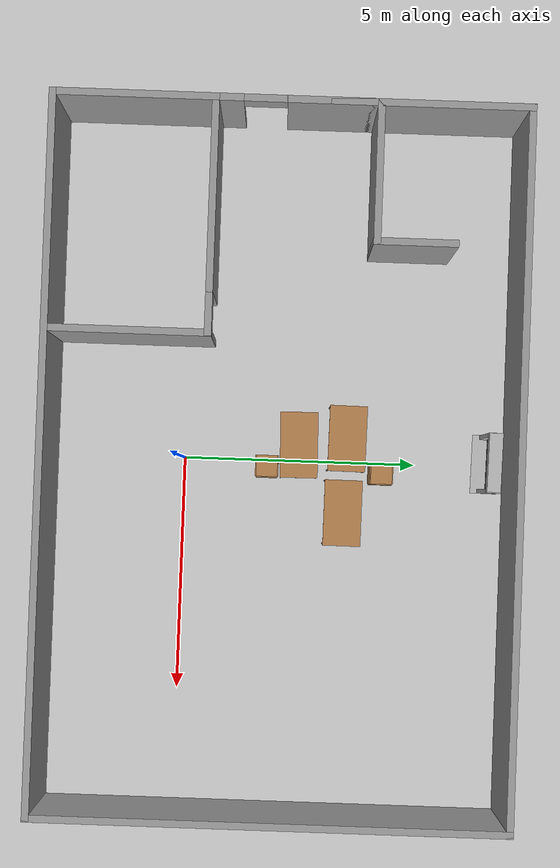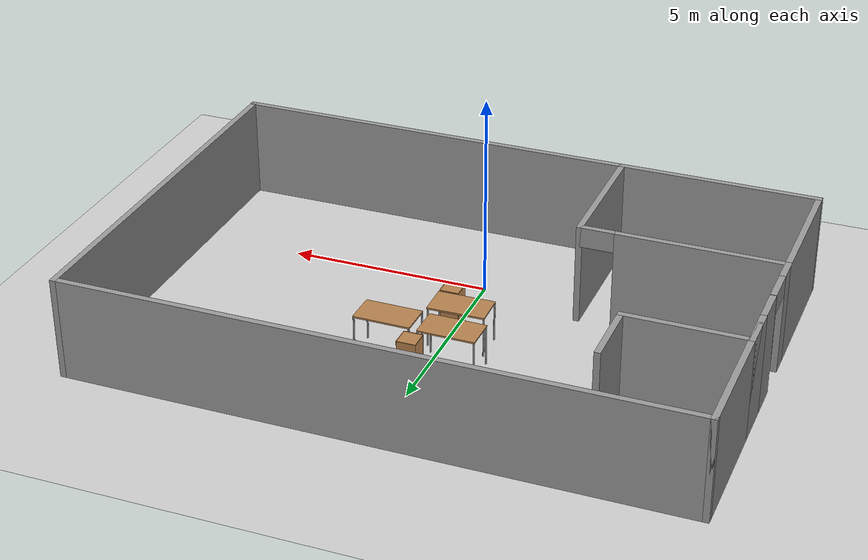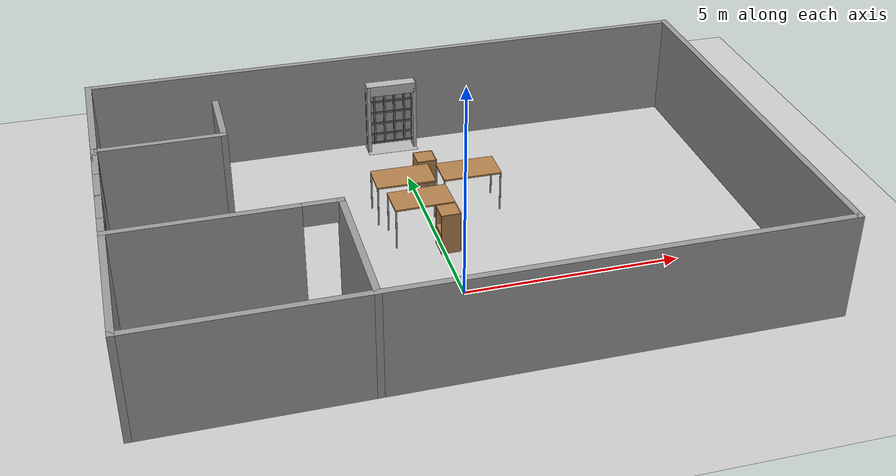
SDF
<sdf version="1.6">
 <world name="default">
  <model name="ground_plane">
   <static>1</static>
   <link name="link">
    <collision name="collision">
     <geometry><plane><normal>0 0 1</normal><size>100 100</size></plane></geometry>
     <surface><friction><ode><mu>100</mu><mu2>50</mu2></ode></friction></surface>
    </collision>
    <visual name="visual">
     <cast_shadows>0</cast_shadows>
     <geometry><plane><normal>0 0 1</normal><size>100 100</size></plane></geometry>
     <material>
      <script><uri>file://media/materials/scripts/gazebo.material</uri><name>Gazebo/Grey</name></script>
     </material>
    </visual>
   </link>
  </model>
  <model name="table_7">
   <static>0</static>
   <link name="link">
    <collision name="surface">
     <pose>0 0 1 0 -0 0</pose>
     <geometry><box><size>1.5 0.8 0.03</size></box></geometry>
     <surface><friction><ode><mu>0.6</mu><mu2>0.6</mu2></ode></friction></surface>
    </collision>
    <visual name="visual1">
     <pose>0 0 1 0 -0 0</pose>
     <geometry><box><size>1.4 0.8 0.04</size></box></geometry>
     <material>
      <script><uri>file://media/materials/scripts/gazebo.material</uri><name>Gazebo/Wood</name></script>
     </material>
    </visual>
    <collision name="front_left_leg">
     <pose>0.68 0.38 0.5 0 -0 0</pose>
     <geometry><cylinder><radius>0.02</radius><length>1</length></cylinder></geometry>
    </collision>
    <visual name="front_left_leg">
     <pose>0.68 0.38 0.5 0 -0 0</pose>
     <geometry><cylinder><radius>0.02</radius><length>1</length></cylinder></geometry>
     <material>
      <script><uri>file://media/materials/scripts/gazebo.material</uri><name>Gazebo/Grey</name></script>
     </material>
    </visual>
    <collision name="front_right_leg">
     <pose>0.68 -0.38 0.5 0 -0 0</pose>
     <geometry><cylinder><radius>0.02</radius><length>1</length></cylinder></geometry>
    </collision>
    <visual name="front_right_leg">
     <pose>0.68 -0.38 0.5 0 -0 0</pose>
     <geometry><cylinder><radius>0.02</radius><length>1</length></cylinder></geometry>
     <material>
      <script><uri>file://media/materials/scripts/gazebo.material</uri><name>Gazebo/Grey</name></script>
     </material>
    </visual>
    <collision name="back_right_leg">
     <pose>-0.68 -0.38 0.5 0 -0 0</pose>
     <geometry><cylinder><radius>0.02</radius><length>1</length></cylinder></geometry>
    </collision>
    <visual name="back_right_leg">
     <pose>-0.68 -0.38 0.5 0 -0 0</pose>
     <geometry><cylinder><radius>0.02</radius><length>1</length></cylinder></geometry>
     <material>
      <script><uri>file://media/materials/scripts/gazebo.material</uri><name>Gazebo/Grey</name></script>
     </material>
    </visual>
    <collision name="back_left_leg">
     <pose>-0.68 0.38 0.5 0 -0 0</pose>
     <geometry><cylinder><radius>0.02</radius><length>1</length></cylinder></geometry>
    </collision>
    <visual name="back_left_leg">
     <pose>-0.68 0.38 0.5 0 -0 0</pose>
     <geometry><cylinder><radius>0.02</radius><length>1</length></cylinder></geometry>
     <material>
      <script><uri>file://media/materials/scripts/gazebo.material</uri><name>Gazebo/Grey</name></script>
     </material>
    </visual>
    <inertial>
     <inertia><ixx>1</ixx><ixy>0</ixy><ixz>0</ixz><iyy>1</iyy><iyz>0</iyz><izz>1</izz></inertia>
     <mass>1</mass>
    </inertial>
   </link>
   <pose>-0.500854 3.49556 -2e-06 0 -2e-06 -0.011276</pose>
  </model>
  <model name="table_7_clone">
   <static>0</static>
   <link name="link">
    <collision name="surface">
     <pose>0 0 1 0 -0 0</pose>
     <geometry><box><size>1.5 0.8 0.03</size></box></geometry>
     <surface><friction><ode><mu>0.6</mu><mu2>0.6</mu2></ode></friction></surface>
    </collision>
    <visual name="visual1">
     <pose>0 0 1 0 -0 0</pose>
     <geometry><box><size>1.4 0.8 0.04</size></box></geometry>
     <material>
      <script><uri>file://media/materials/scripts/gazebo.material</uri><name>Gazebo/Wood</name></script>
     </material>
    </visual>
    <collision name="front_left_leg">
     <pose>0.68 0.38 0.5 0 -0 0</pose>
     <geometry><cylinder><radius>0.02</radius><length>1</length></cylinder></geometry>
    </collision>
    <visual name="front_left_leg">
     <pose>0.68 0.38 0.5 0 -0 0</pose>
     <geometry><cylinder><radius>0.02</radius><length>1</length></cylinder></geometry>
     <material>
      <script><uri>file://media/materials/scripts/gazebo.material</uri><name>Gazebo/Grey</name></script>
     </material>
    </visual>
    <collision name="front_right_leg">
     <pose>0.68 -0.38 0.5 0 -0 0</pose>
     <geometry><cylinder><radius>0.02</radius><length>1</length></cylinder></geometry>
    </collision>
    <visual name="front_right_leg">
     <pose>0.68 -0.38 0.5 0 -0 0</pose>
     <geometry><cylinder><radius>0.02</radius><length>1</length></cylinder></geometry>
     <material>
      <script><uri>file://media/materials/scripts/gazebo.material</uri><name>Gazebo/Grey</name></script>
     </material>
    </visual>
    <collision name="back_right_leg">
     <pose>-0.68 -0.38 0.5 0 -0 0</pose>
     <geometry><cylinder><radius>0.02</radius><length>1</length></cylinder></geometry>
    </collision>
    <visual name="back_right_leg">
     <pose>-0.68 -0.38 0.5 0 -0 0</pose>
     <geometry><cylinder><radius>0.02</radius><length>1</length></cylinder></geometry>
     <material>
      <script><uri>file://media/materials/scripts/gazebo.material</uri><name>Gazebo/Grey</name></script>
     </material>
    </visual>
    <collision name="back_left_leg">
     <pose>-0.68 0.38 0.5 0 -0 0</pose>
     <geometry><cylinder><radius>0.02</radius><length>1</length></cylinder></geometry>
    </collision>
    <visual name="back_left_leg">
     <pose>-0.68 0.38 0.5 0 -0 0</pose>
     <geometry><cylinder><radius>0.02</radius><length>1</length></cylinder></geometry>
     <material>
      <script><uri>file://media/materials/scripts/gazebo.material</uri><name>Gazebo/Grey</name></script>
     </material>
    </visual>
    <inertial>
     <inertia><ixx>1</ixx><ixy>0</ixy><ixz>0</ixz><iyy>1</iyy><iyz>0</iyz><izz>1</izz></inertia>
     <mass>1</mass>
    </inertial>
   </link>
   <pose>-0.330828 2.46766 -9e-06 0 -1e-06 0.019149</pose>
  </model>
  <model name="table_7_clone_0">
   <static>0</static>
   <link name="link">
    <collision name="surface">
     <pose>0 0 1 0 -0 0</pose>
     <geometry><box><size>1.5 0.8 0.03</size></box></geometry>
     <surface><friction><ode><mu>0.6</mu><mu2>0.6</mu2></ode></friction></surface>
    </collision>
    <visual name="visual1">
     <pose>0 0 1 0 -0 0</pose>
     <geometry><box><size>1.4 0.8 0.04</size></box></geometry>
     <material>
      <script><uri>file://media/materials/scripts/gazebo.material</uri><name>Gazebo/Wood</name></script>
     </material>
    </visual>
    <collision name="front_left_leg">
     <pose>0.68 0.38 0.5 0 -0 0</pose>
     <geometry><cylinder><radius>0.02</radius><length>1</length></cylinder></geometry>
    </collision>
    <visual name="front_left_leg">
     <pose>0.68 0.38 0.5 0 -0 0</pose>
     <geometry><cylinder><radius>0.02</radius><length>1</length></cylinder></geometry>
     <material>
      <script><uri>file://media/materials/scripts/gazebo.material</uri><name>Gazebo/Grey</name></script>
     </material>
    </visual>
    <collision name="front_right_leg">
     <pose>0.68 -0.38 0.5 0 -0 0</pose>
     <geometry><cylinder><radius>0.02</radius><length>1</length></cylinder></geometry>
    </collision>
    <visual name="front_right_leg">
     <pose>0.68 -0.38 0.5 0 -0 0</pose>
     <geometry><cylinder><radius>0.02</radius><length>1</length></cylinder></geometry>
     <material>
      <script><uri>file://media/materials/scripts/gazebo.material</uri><name>Gazebo/Grey</name></script>
     </material>
    </visual>
    <collision name="back_right_leg">
     <pose>-0.68 -0.38 0.5 0 -0 0</pose>
     <geometry><cylinder><radius>0.02</radius><length>1</length></cylinder></geometry>
    </collision>
    <visual name="back_right_leg">
     <pose>-0.68 -0.38 0.5 0 -0 0</pose>
     <geometry><cylinder><radius>0.02</radius><length>1</length></cylinder></geometry>
     <material>
      <script><uri>file://media/materials/scripts/gazebo.material</uri><name>Gazebo/Grey</name></script>
     </material>
    </visual>
    <collision name="back_left_leg">
     <pose>-0.68 0.38 0.5 0 -0 0</pose>
     <geometry><cylinder><radius>0.02</radius><length>1</length></cylinder></geometry>
    </collision>
    <visual name="back_left_leg">
     <pose>-0.68 0.38 0.5 0 -0 0</pose>
     <geometry><cylinder><radius>0.02</radius><length>1</length></cylinder></geometry>
     <material>
      <script><uri>file://media/materials/scripts/gazebo.material</uri><name>Gazebo/Grey</name></script>
     </material>
    </visual>
    <inertial>
     <inertia><ixx>1</ixx><ixy>0</ixy><ixz>0</ixz><iyy>1</iyy><iyz>0</iyz><izz>1</izz></inertia>
     <mass>1</mass>
    </inertial>
   </link>
   <pose>1.08492 3.44239 -6e-06 1e-06 -4e-06 -0.005791</pose>
  </model>
  <model name="office_building_0">
   <pose>0.0648 2.0804 0 0 -0 0</pose>
   <link name="Wall_15">
    <collision name="Wall_15_Collision">
     <geometry><box><size>3.25 0.15 2.5</size></box></geometry>
     <pose>0 0 1.25 0 -0 0</pose>
    </collision>
    <visual name="Wall_15_Visual">
     <pose>0 0 1.25 0 -0 0</pose>
     <geometry><box><size>3.25 0.15 2.5</size></box></geometry>
     <material>
      <script><uri>file://media/materials/scripts/gazebo.material</uri><name>Gazebo/Grey</name></script>
      <ambient>1 1 1 1</ambient>
     </material>
    </visual>
    <pose>-7.425 3.375 0 0 0 -1.5708</pose>
   </link>
   <link name="Wall_16">
    <collision name="Wall_16_Collision">
     <geometry><box><size>3 0.15 2.5</size></box></geometry>
     <pose>0 0 1.25 0 -0 0</pose>
    </collision>
    <visual name="Wall_16_Visual">
     <pose>0 0 1.25 0 -0 0</pose>
     <geometry><box><size>3 0.15 2.5</size></box></geometry>
     <material>
      <script><uri>file://media/materials/scripts/gazebo.material</uri><name>Gazebo/Grey</name></script>
      <ambient>1 1 1 1</ambient>
     </material>
    </visual>
    <pose>-6 1.825 0 0 -0 0</pose>
   </link>
   <link name="Wall_17">
    <collision name="Wall_17_Collision">
     <geometry><box><size>1.75 0.15 2.5</size></box></geometry>
     <pose>0 0 1.25 0 -0 0</pose>
    </collision>
    <visual name="Wall_17_Visual">
     <pose>0 0 1.25 0 -0 0</pose>
     <geometry><box><size>1.75 0.15 2.5</size></box></geometry>
     <material>
      <script><uri>file://media/materials/scripts/gazebo.material</uri><name>Gazebo/Grey</name></script>
      <ambient>1 1 1 1</ambient>
     </material>
    </visual>
    <pose>-4.575 2.625 0 0 -0 1.5708</pose>
   </link>
   <link name="Wall_19">
    <collision name="Wall_19_Collision">
     <geometry><box><size>10 0.15 2.5</size></box></geometry>
     <pose>0 0 1.25 0 -0 0</pose>
    </collision>
    <visual name="Wall_19_Visual">
     <pose>0 0 1.25 0 -0 0</pose>
     <geometry><box><size>10 0.15 2.5</size></box></geometry>
     <material>
      <script><uri>file://media/materials/scripts/gazebo.material</uri><name>Gazebo/Grey</name></script>
      <ambient>1 1 1 1</ambient>
     </material>
    </visual>
    <pose>7.425 0 0 0 0 -1.5708</pose>
   </link>
   <link name="Wall_20">
    <collision name="Wall_20_Collision">
     <geometry><box><size>15 0.15 2.5</size></box></geometry>
     <pose>0 0 1.25 0 -0 0</pose>
    </collision>
    <visual name="Wall_20_Visual">
     <pose>0 0 1.25 0 -0 0</pose>
     <geometry><box><size>15 0.15 2.5</size></box></geometry>
     <material>
      <script><uri>file://media/materials/scripts/gazebo.material</uri><name>Gazebo/Grey</name></script>
      <ambient>1 1 1 1</ambient>
     </material>
    </visual>
    <pose>0 -4.925 0 0 -0 3.14159</pose>
   </link>
   <link name="Wall_21">
    <collision name="Wall_21_Collision">
     <geometry><box><size>3.5 0.15 2.5</size></box></geometry>
     <pose>0 0 1.25 0 -0 0</pose>
    </collision>
    <visual name="Wall_21_Visual">
     <pose>0 0 1.25 0 -0 0</pose>
     <geometry><box><size>3.5 0.15 2.5</size></box></geometry>
     <material>
      <script><uri>file://media/materials/scripts/gazebo.material</uri><name>Gazebo/Grey</name></script>
      <ambient>1 1 1 1</ambient>
     </material>
    </visual>
    <pose>-7.425 -3.25 0 0 -0 1.5708</pose>
   </link>
   <link name="Wall_22">
    <pose>-5 -1.575 0 0 -0 0</pose>
    <visual name="Wall_22_Visual_0">
     <pose>-0.454413 0 1.25 0 -0 0</pose>
     <geometry><box><size>4.09117 0.15 2.5</size></box></geometry>
     <material>
      <script><uri>file://media/materials/scripts/gazebo.material</uri><name>Gazebo/Grey</name></script>
      <ambient>1 1 1 1</ambient>
     </material>
    </visual>
    <collision name="Wall_22_Collision_0">
     <geometry><box><size>4.09117 0.15 2.5</size></box></geometry>
     <pose>-0.454413 0 1.25 0 -0 0</pose>
    </collision>
    <visual name="Wall_22_Visual_1">
     <pose>2.49559 0 1.25 0 -0 0</pose>
     <geometry><box><size>0.008827 0.15 2.5</size></box></geometry>
     <material>
      <script><uri>file://media/materials/scripts/gazebo.material</uri><name>Gazebo/Grey</name></script>
      <ambient>1 1 1 1</ambient>
     </material>
    </visual>
    <collision name="Wall_22_Collision_1">
     <geometry><box><size>0.008827 0.15 2.5</size></box></geometry>
     <pose>2.49559 0 1.25 0 -0 0</pose>
    </collision>
    <visual name="Wall_22_Visual_2">
     <pose>2.04117 0 2.25 0 -0 0</pose>
     <geometry><box><size>0.9 0.15 0.5</size></box></geometry>
     <material>
      <script><uri>file://media/materials/scripts/gazebo.material</uri><name>Gazebo/Grey</name></script>
      <ambient>1 1 1 1</ambient>
     </material>
    </visual>
    <collision name="Wall_22_Collision_2">
     <geometry><box><size>0.9 0.15 0.5</size></box></geometry>
     <pose>2.04117 0 2.25 0 -0 0</pose>
    </collision>
   </link>
   <link name="Wall_23">
    <collision name="Wall_23_Collision">
     <geometry><box><size>3.5 0.15 2.5</size></box></geometry>
     <pose>0 0 1.25 0 -0 0</pose>
    </collision>
    <visual name="Wall_23_Visual">
     <pose>0 0 1.25 0 -0 0</pose>
     <geometry><box><size>3.5 0.15 2.5</size></box></geometry>
     <material>
      <script><uri>file://media/materials/scripts/gazebo.material</uri><name>Gazebo/Grey</name></script>
      <ambient>1 1 1 1</ambient>
     </material>
    </visual>
    <pose>-2.575 -3.25 0 0 0 -1.5708</pose>
   </link>
   <link name="Wall_25">
    <pose>-7.425 0.125 0 0 -0 1.5708</pose>
    <visual name="Wall_25_Visual_0">
     <pose>-1.45033 0 1.25 0 -0 0</pose>
     <geometry><box><size>0.649349 0.15 2.5</size></box></geometry>
     <material>
      <script><uri>file://media/materials/scripts/gazebo.material</uri><name>Gazebo/Grey</name></script>
      <ambient>1 1 1 1</ambient>
     </material>
    </visual>
    <collision name="Wall_25_Collision_0">
     <geometry><box><size>0.649349 0.15 2.5</size></box></geometry>
     <pose>-1.45033 0 1.25 0 -0 0</pose>
    </collision>
    <visual name="Wall_25_Visual_1">
     <pose>0.774675 0 1.25 0 -0 0</pose>
     <geometry><box><size>2.00065 0.15 2.5</size></box></geometry>
     <material>
      <script><uri>file://media/materials/scripts/gazebo.material</uri><name>Gazebo/Grey</name></script>
      <ambient>1 1 1 1</ambient>
     </material>
    </visual>
    <collision name="Wall_25_Collision_1">
     <geometry><box><size>2.00065 0.15 2.5</size></box></geometry>
     <pose>0.774675 0 1.25 0 -0 0</pose>
    </collision>
    <visual name="Wall_25_Visual_2">
     <pose>1.21823 0 1.25 0 -0 0</pose>
     <geometry><box><size>1.11353 0.15 2.5</size></box></geometry>
     <material>
      <script><uri>file://media/materials/scripts/gazebo.material</uri><name>Gazebo/Grey</name></script>
      <ambient>1 1 1 1</ambient>
     </material>
    </visual>
    <collision name="Wall_25_Collision_2">
     <geometry><box><size>1.11353 0.15 2.5</size></box></geometry>
     <pose>1.21823 0 1.25 0 -0 0</pose>
    </collision>
    <visual name="Wall_25_Visual_3">
     <pose>-0.682092 0 2.25 0 -0 0</pose>
     <geometry><box><size>0.887117 0.15 0.5</size></box></geometry>
     <material>
      <script><uri>file://media/materials/scripts/gazebo.material</uri><name>Gazebo/Grey</name></script>
      <ambient>1 1 1 1</ambient>
     </material>
    </visual>
    <collision name="Wall_25_Collision_3">
     <geometry><box><size>0.887117 0.15 0.5</size></box></geometry>
     <pose>-0.682092 0 2.25 0 -0 0</pose>
    </collision>
   </link>
   <link name="Wall_4">
    <collision name="Wall_4_Collision">
     <geometry><box><size>15 0.15 2.5</size></box></geometry>
     <pose>0 0 1.25 0 -0 0</pose>
    </collision>
    <visual name="Wall_4_Visual">
     <pose>0 0 1.25 0 -0 0</pose>
     <geometry><box><size>15 0.15 2.5</size></box></geometry>
     <material>
      <script><uri>file://media/materials/scripts/gazebo.material</uri><name>Gazebo/Grey</name></script>
      <ambient>1 1 1 1</ambient>
     </material>
    </visual>
    <pose>0 4.925 0 0 -0 0</pose>
   </link>
   <static>1</static>
  </model>
  <model name="ball_bearing">
   <link name="link">
    <pose>0 0 0.003 0 -0 0</pose>
    <inertial>
     <mass>0.0011</mass>
     <inertia>
      <ixx>3.96e-09</ixx>
      <ixy>0</ixy>
      <ixz>0</ixz>
      <iyy>3.96e-09</iyy>
      <iyz>0</iyz>
      <izz>3.96e-09</izz>
     </inertia>
    </inertial>
    <collision name="collision">
     <geometry><sphere><radius>0.003</radius></sphere></geometry>
     <surface>
      <contact>
       <poissons_ratio>0.305</poissons_ratio>
       <elastic_modulus>2e+11</elastic_modulus>
       <ode><kp>100000</kp><kd>100</kd><max_vel>100</max_vel><min_depth>0.001</min_depth></ode>
      </contact>
      <friction>
       <torsional>
        <coefficient>1</coefficient>
        <use_patch_radius>0</use_patch_radius>
        <surface_radius>0.01</surface_radius>
       </torsional>
      </friction>
     </surface>
    </collision>
    <visual name="visual">
     <geometry><sphere><radius>0.003</radius></sphere></geometry>
     <material>
      <script><uri>file://media/materials/scripts/gazebo.material</uri><name>Gazebo/Grey</name></script>
     </material>
    </visual>
    <velocity_decay><linear>0</linear><angular>0.005</angular></velocity_decay>
   </link>
   <pose>-2.7544 0.153003 -0.001 0 -0 0</pose>
  </model>
  <model name="frc2016_portcullis">
   <link name="base">
    <inertial>
     <mass>50</mass>
     <pose>0 0 1.02941 0 -0 0</pose>
     <inertia><ixx>3.81711</ixx><ixy>0</ixy><ixz>0</ixz><iyy>4.87698</iyy><iyz>0</iyz><izz>1.6283</izz></inertia>
    </inertial>
    <visual name="platform">
     <pose>0 0 0.07284 0 -0 0</pose>
     <geometry><box><size>1.27 0.5842 0.003175</size></box></geometry>
    </visual>
    <collision name="platform">
     <pose>0 0 0.07284 0 -0 0</pose>
     <geometry><box><size>1.27 0.5842 0.003175</size></box></geometry>
    </collision>
    <visual name="left_column">
     <pose>0.59284 0 0.99042 0 -0 0</pose>
     <geometry><box><size>0.08375 0.28575 1.83198</size></box></geometry>
    </visual>
    <collision name="left_column">
     <pose>0.59284 0 0.99042 0 -0 0</pose>
     <geometry><box><size>0.08375 0.28575 1.83198</size></box></geometry>
    </collision>
    <visual name="right_column">
     <pose>-0.57759 0 0.99042 0 -0 0</pose>
     <geometry><box><size>0.08375 0.28575 1.83198</size></box></geometry>
    </visual>
    <collision name="right_column">
     <pose>-0.57759 0 0.99042 0 -0 0</pose>
     <geometry><box><size>0.08375 0.28575 1.83198</size></box></geometry>
    </collision>
    <visual name="top">
     <pose>-0.00034 0 1.77722 0 -0 0</pose>
     <geometry><box><size>1.22962 0.28575 0.26657</size></box></geometry>
    </visual>
    <collision name="top">
     <pose>-0.00034 0 1.77722 0 -0 0</pose>
     <geometry><box><size>1.22962 0.28575 0.26657</size></box></geometry>
    </collision>
    <visual name="castor1">
     <pose>-0.45651 -0.16234 0.03272 0 -0 0</pose>
     <geometry><sphere><radius>0.03272</radius></sphere></geometry>
    </visual>
    <collision name="castor1">
     <pose>-0.45651 -0.16234 0.03272 0 -0 0</pose>
     <geometry><sphere><radius>0.03272</radius></sphere></geometry>
    </collision>
    <visual name="castor2">
     <pose>-0.27883 0.21836 0.03272 0 -0 0</pose>
     <geometry><sphere><radius>0.03272</radius></sphere></geometry>
    </visual>
    <collision name="castor2">
     <pose>-0.27883 0.21836 0.03272 0 -0 0</pose>
     <geometry><sphere><radius>0.03272</radius></sphere></geometry>
    </collision>
    <visual name="castor3">
     <pose>0.28083 0.21906 0.03272 0 -0 0</pose>
     <geometry><sphere><radius>0.03272</radius></sphere></geometry>
    </visual>
    <collision name="castor3">
     <pose>0.28083 0.21906 0.03272 0 -0 0</pose>
     <geometry><sphere><radius>0.03272</radius></sphere></geometry>
    </collision>
    <visual name="castor4">
     <pose>0.45871 -0.16186 0.03272 0 -0 0</pose>
     <geometry><sphere><radius>0.03272</radius></sphere></geometry>
    </visual>
    <collision name="castor4">
     <pose>0.45871 -0.16186 0.03272 0 -0 0</pose>
     <geometry><sphere><radius>0.03272</radius></sphere></geometry>
    </collision>
   </link>
   <link name="gate">
    <pose>-0.0287 0.02885 0.93327 0 -0 0</pose>
    <inertial>
     <mass>2</mass>
     <inertia><ixx>3.81711</ixx><ixy>0</ixy><ixz>0</ixz><iyy>4.87698</iyy><iyz>0</iyz><izz>1.6283</izz></inertia>
    </inertial>
    <collision name="collision"><geometry><box><size>1.1938 0.02496 1.45732</size></box></geometry></collision>
    <visual name="horz_1">
     <pose>0 0 -0.70326 0 -0 0</pose>
     <geometry><box><size>1.1938 0.02496 0.0508</size></box></geometry>
     <material><ambient>0.4 0.4 0.4 1</ambient><diffuse>0.4 0.4 0.4 1</diffuse></material>
    </visual>
    <visual name="horz_2">
     <pose>0 0 -0.44926 0 -0 0</pose>
     <geometry><box><size>1.1938 0.02496 0.0508</size></box></geometry>
     <material><ambient>0.4 0.4 0.4 1</ambient><diffuse>0.4 0.4 0.4 1</diffuse></material>
    </visual>
    <visual name="horz_3">
     <pose>0 0 -0.14517 0 -0 0</pose>
     <geometry><box><size>1.1938 0.02496 0.0508</size></box></geometry>
     <material><ambient>0.4 0.4 0.4 1</ambient><diffuse>0.4 0.4 0.4 1</diffuse></material>
    </visual>
    <visual name="horz_4">
     <pose>0 0 0.16034 0 -0 0</pose>
     <geometry><box><size>1.1938 0.02496 0.0508</size></box></geometry>
     <material><ambient>0.4 0.4 0.4 1</ambient><diffuse>0.4 0.4 0.4 1</diffuse></material>
    </visual>
    <visual name="horz_5">
     <pose>0 0 0.46514 0 -0 0</pose>
     <geometry><box><size>1.1938 0.02496 0.0508</size></box></geometry>
     <material><ambient>0.4 0.4 0.4 1</ambient><diffuse>0.4 0.4 0.4 1</diffuse></material>
    </visual>
    <visual name="horz_6">
     <pose>0 0 0.72994 0 -0 0</pose>
     <geometry><box><size>1.1938 0.02496 0.0508</size></box></geometry>
     <material><ambient>0.4 0.4 0.4 1</ambient><diffuse>0.4 0.4 0.4 1</diffuse></material>
    </visual>
    <visual name="vert_1">
     <pose>-0.58448 0 0 0 -0 0</pose>
     <geometry><box><size>0.02495 0.02496 1.45732</size></box></geometry>
     <material><ambient>0.4 0.4 0.4 1</ambient><diffuse>0.4 0.4 0.4 1</diffuse></material>
    </visual>
    <visual name="vert_2">
     <pose>-0.38128 0 0 0 -0 0</pose>
     <geometry><box><size>0.0508 0.02496 1.45732</size></box></geometry>
     <material><ambient>0.4 0.4 0.4 1</ambient><diffuse>0.4 0.4 0.4 1</diffuse></material>
    </visual>
    <visual name="vert_3">
     <pose>-0.12728 0 0 0 -0 0</pose>
     <geometry><box><size>0.0508 0.02496 1.45732</size></box></geometry>
     <material><ambient>0.4 0.4 0.4 1</ambient><diffuse>0.4 0.4 0.4 1</diffuse></material>
    </visual>
    <visual name="vert_4">
     <pose>0.12672 0 0 0 -0 0</pose>
     <geometry><box><size>0.0508 0.02496 1.45732</size></box></geometry>
     <material><ambient>0.4 0.4 0.4 1</ambient><diffuse>0.4 0.4 0.4 1</diffuse></material>
    </visual>
    <visual name="vert_5">
     <pose>0.38072 0 0 0 -0 0</pose>
     <geometry><box><size>0.0508 0.02496 1.45732</size></box></geometry>
     <material><ambient>0.4 0.4 0.4 1</ambient><diffuse>0.4 0.4 0.4 1</diffuse></material>
    </visual>
    <visual name="vert_6">
     <pose>0.58392 0 0 0 -0 0</pose>
     <geometry><box><size>0.02495 0.02496 1.45732</size></box></geometry>
     <material><ambient>0.4 0.4 0.4 1</ambient><diffuse>0.4 0.4 0.4 1</diffuse></material>
    </visual>
   </link>
   <joint name="joint" type="prismatic">
    <parent>base</parent>
    <child>gate</child>
    <axis>
     <xyz>0 0 1</xyz>
     <limit><lower>0</lower><upper>1</upper></limit>
     <use_parent_model_frame>0</use_parent_model_frame>
     <dynamics><spring_reference>0</spring_reference><spring_stiffness>0</spring_stiffness></dynamics>
    </axis>
   </joint>
   <pose>-0.075158 6.53715 0 -1e-06 -1e-06 -0.017303</pose>
  </model>
  <model name="cabinet_clone_0">
   <static>1</static>
   <link name="cabinet_bottom_plate">
    <inertial>
     <pose>0 0 -1 0 -0 0</pose>
     <inertia><ixx>2.05</ixx><ixy>0</ixy><ixz>0</ixz><iyy>2.05</iyy><iyz>0</iyz><izz>2.05</izz></inertia>
     <mass>25</mass>
    </inertial>
    <collision name="cabinet_bottom_plate_geom">
     <pose>0 0 0.01 0 -0 0</pose>
     <geometry><box><size>0.45 0.45 0.02</size></box></geometry>
    </collision>
    <visual name="cabinet_bottom_plate_geom_visual">
     <pose>0 0 0.01 0 -0 0</pose>
     <geometry><box><size>0.45 0.45 0.02</size></box></geometry>
     <material>
      <script><uri>file://media/materials/scripts/gazebo.material</uri><name>Gazebo/Wood</name></script>
     </material>
    </visual>
    <collision name="cabinet_bottom_plate_geom_cabinet_back_plate">
     <pose>0.235 0 0.51 0 -0 0</pose>
     <geometry><box><size>0.02 0.45 1.02</size></box></geometry>
    </collision>
    <visual name="cabinet_bottom_plate_geom_cabinet_back_plate_visual">
     <pose>0.235 0 0.51 0 -0 0</pose>
     <geometry><box><size>0.02 0.45 1.02</size></box></geometry>
     <material>
      <script><uri>file://media/materials/scripts/gazebo.material</uri><name>Gazebo/Wood</name></script>
     </material>
    </visual>
    <collision name="cabinet_bottom_plate_geom_cabinet_left_plate">
     <pose>0 0.235 0.51 0 -0 0</pose>
     <geometry><box><size>0.45 0.02 1.02</size></box></geometry>
    </collision>
    <visual name="cabinet_bottom_plate_geom_cabinet_left_plate_visual">
     <pose>0 0.235 0.51 0 -0 0</pose>
     <geometry><box><size>0.45 0.02 1.02</size></box></geometry>
     <material>
      <script><uri>file://media/materials/scripts/gazebo.material</uri><name>Gazebo/Wood</name></script>
     </material>
    </visual>
    <collision name="cabinet_bottom_plate_geom_cabinet_middle_plate">
     <pose>0 0 0.51 0 -0 0</pose>
     <geometry><box><size>0.45 0.45 0.02</size></box></geometry>
    </collision>
    <visual name="cabinet_bottom_plate_geom_cabinet_middle_plate_visual">
     <pose>0 0 0.51 0 -0 0</pose>
     <geometry><box><size>0.45 0.45 0.02</size></box></geometry>
     <material>
      <script><uri>file://media/materials/scripts/gazebo.material</uri><name>Gazebo/Wood</name></script>
     </material>
    </visual>
    <collision name="cabinet_bottom_plate_geom_cabinet_right_plate">
     <pose>0 -0.235 0.51 0 -0 0</pose>
     <geometry><box><size>0.45 0.02 1.02</size></box></geometry>
    </collision>
    <visual name="cabinet_bottom_plate_geom_cabinet_right_plate_visual">
     <pose>0 -0.235 0.51 0 -0 0</pose>
     <geometry><box><size>0.45 0.02 1.02</size></box></geometry>
     <material>
      <script><uri>file://media/materials/scripts/gazebo.material</uri><name>Gazebo/Wood</name></script>
     </material>
    </visual>
    <collision name="cabinet_bottom_plate_geom_cabinet_top_plate">
     <pose>0 0 1.01 0 -0 0</pose>
     <geometry><box><size>0.45 0.45 0.02</size></box></geometry>
    </collision>
    <visual name="cabinet_bottom_plate_geom_cabinet_top_plate_visual">
     <pose>0 0 1.01 0 -0 0</pose>
     <geometry><box><size>0.45 0.45 0.02</size></box></geometry>
     <material>
      <script><uri>file://media/materials/scripts/gazebo.material</uri><name>Gazebo/Wood</name></script>
     </material>
    </visual>
   </link>
   <pose>0.13424 1.7982 0 0 -0 0</pose>
  </model>
  <model name="cabinet_clone_3">
   <static>1</static>
   <link name="cabinet_bottom_plate">
    <inertial>
     <pose>0 0 -1 0 -0 0</pose>
     <inertia><ixx>2.05</ixx><ixy>0</ixy><ixz>0</ixz><iyy>2.05</iyy><iyz>0</iyz><izz>2.05</izz></inertia>
     <mass>25</mass>
    </inertial>
    <collision name="cabinet_bottom_plate_geom">
     <pose>0 0 0.01 0 -0 0</pose>
     <geometry><box><size>0.45 0.45 0.02</size></box></geometry>
    </collision>
    <visual name="cabinet_bottom_plate_geom_visual">
     <pose>0 0 0.01 0 -0 0</pose>
     <geometry><box><size>0.45 0.45 0.02</size></box></geometry>
     <material>
      <script><uri>file://media/materials/scripts/gazebo.material</uri><name>Gazebo/Wood</name></script>
     </material>
    </visual>
    <collision name="cabinet_bottom_plate_geom_cabinet_back_plate">
     <pose>0.235 0 0.51 0 -0 0</pose>
     <geometry><box><size>0.02 0.45 1.02</size></box></geometry>
    </collision>
    <visual name="cabinet_bottom_plate_geom_cabinet_back_plate_visual">
     <pose>0.235 0 0.51 0 -0 0</pose>
     <geometry><box><size>0.02 0.45 1.02</size></box></geometry>
     <material>
      <script><uri>file://media/materials/scripts/gazebo.material</uri><name>Gazebo/Wood</name></script>
     </material>
    </visual>
    <collision name="cabinet_bottom_plate_geom_cabinet_left_plate">
     <pose>0 0.235 0.51 0 -0 0</pose>
     <geometry><box><size>0.45 0.02 1.02</size></box></geometry>
    </collision>
    <visual name="cabinet_bottom_plate_geom_cabinet_left_plate_visual">
     <pose>0 0.235 0.51 0 -0 0</pose>
     <geometry><box><size>0.45 0.02 1.02</size></box></geometry>
     <material>
      <script><uri>file://media/materials/scripts/gazebo.material</uri><name>Gazebo/Wood</name></script>
     </material>
    </visual>
    <collision name="cabinet_bottom_plate_geom_cabinet_middle_plate">
     <pose>0 0 0.51 0 -0 0</pose>
     <geometry><box><size>0.45 0.45 0.02</size></box></geometry>
    </collision>
    <visual name="cabinet_bottom_plate_geom_cabinet_middle_plate_visual">
     <pose>0 0 0.51 0 -0 0</pose>
     <geometry><box><size>0.45 0.45 0.02</size></box></geometry>
     <material>
      <script><uri>file://media/materials/scripts/gazebo.material</uri><name>Gazebo/Wood</name></script>
     </material>
    </visual>
    <collision name="cabinet_bottom_plate_geom_cabinet_right_plate">
     <pose>0 -0.235 0.51 0 -0 0</pose>
     <geometry><box><size>0.45 0.02 1.02</size></box></geometry>
    </collision>
    <visual name="cabinet_bottom_plate_geom_cabinet_right_plate_visual">
     <pose>0 -0.235 0.51 0 -0 0</pose>
     <geometry><box><size>0.45 0.02 1.02</size></box></geometry>
     <material>
      <script><uri>file://media/materials/scripts/gazebo.material</uri><name>Gazebo/Wood</name></script>
     </material>
    </visual>
    <collision name="cabinet_bottom_plate_geom_cabinet_top_plate">
     <pose>0 0 1.01 0 -0 0</pose>
     <geometry><box><size>0.45 0.45 0.02</size></box></geometry>
    </collision>
    <visual name="cabinet_bottom_plate_geom_cabinet_top_plate_visual">
     <pose>0 0 1.01 0 -0 0</pose>
     <geometry><box><size>0.45 0.45 0.02</size></box></geometry>
     <material>
      <script><uri>file://media/materials/scripts/gazebo.material</uri><name>Gazebo/Wood</name></script>
     </material>
    </visual>
   </link>
   <pose>0.21345 4.24125 0 0 -0 0</pose>
  </model>
 </world>
</sdf>
